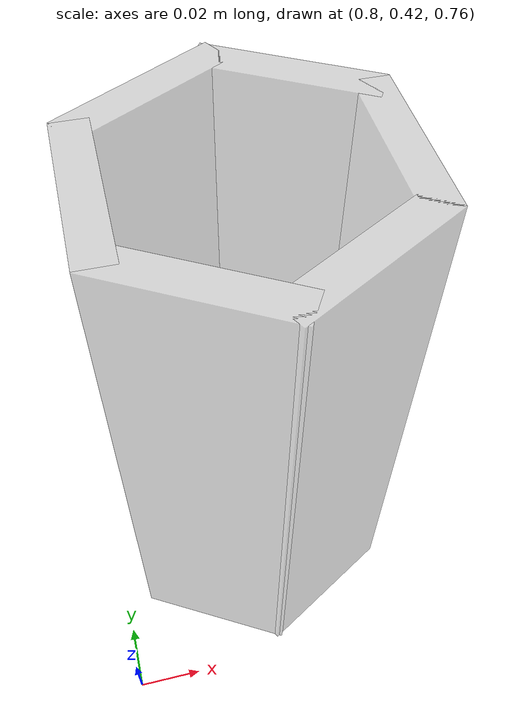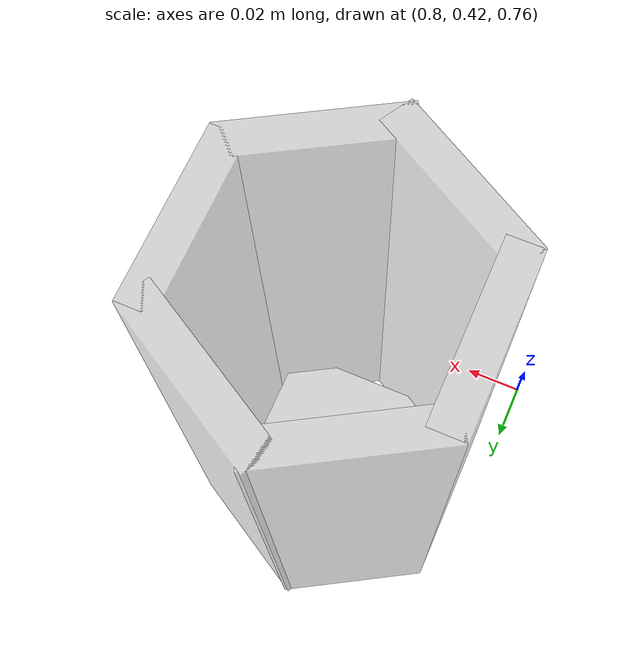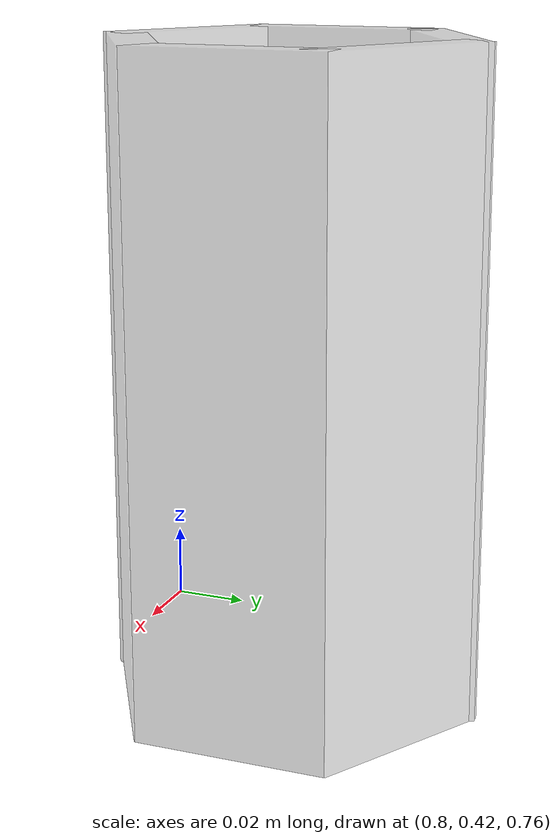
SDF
<sdf version="1.6">
 <world name="default">
  <light name="sun" type="directional">
   <pose>0 0 10 0 -0 0</pose>
   <diffuse>0.8 0.8 0.8 1</diffuse>
   <specular>0.2 0.2 0.2 1</specular>
   <attenuation>
    <range>1000</range>
    <constant>0.9</constant>
    <linear>0.01</linear>
    <quadratic>0.001</quadratic>
   </attenuation>
   <direction>-0.5 0.1 -0.9</direction>
  </light>
  <physics name="dart_1ms" default="1" type="dart">
   <max_step_size>0.001</max_step_size>
   <real_time_factor>1</real_time_factor>
   <real_time_update_rate>1000</real_time_update_rate>
   <dart><solver><solver_type>pgs</solver_type></solver></dart>
  </physics>
  <physics name="dart_2ms" default="0" type="dart">
   <max_step_size>0.002</max_step_size>
   <real_time_factor>1</real_time_factor>
   <real_time_update_rate>500</real_time_update_rate>
   <dart><solver><solver_type>pgs</solver_type></solver></dart>
  </physics>
  <physics name="dart_3ms" default="0" type="dart">
   <max_step_size>0.003</max_step_size>
   <real_time_factor>1</real_time_factor>
   <real_time_update_rate>333</real_time_update_rate>
   <dart><solver><solver_type>pgs</solver_type></solver></dart>
  </physics>
  <physics name="ode_1ms" default="0" type="ode">
   <max_step_size>0.001</max_step_size>
   <real_time_factor>1</real_time_factor>
   <real_time_update_rate>1000</real_time_update_rate>
  </physics>
  <physics name="ode_2ms" default="0" type="ode">
   <max_step_size>0.002</max_step_size>
   <real_time_factor>1</real_time_factor>
   <real_time_update_rate>500</real_time_update_rate>
  </physics>
  <physics name="ode_3ms" default="0" type="ode">
   <max_step_size>0.003</max_step_size>
   <real_time_factor>1</real_time_factor>
   <real_time_update_rate>333</real_time_update_rate>
  </physics>
  <model name="ground_plane">
   <static>1</static>
   <link name="link">
    <collision name="collision">
     <geometry><plane><normal>0 0 1</normal><size>100 100</size></plane></geometry>
     <surface>
      <contact><collide_bitmask>65535</collide_bitmask></contact>
      <friction><ode><mu>100</mu><mu2>50</mu2></ode></friction>
     </surface>
    </collision>
    <visual name="visual">
     <cast_shadows>0</cast_shadows>
     <geometry><plane><normal>0 0 1</normal><size>100 100</size></plane></geometry>
     <material>
      <script><uri>file://media/materials/scripts/gazebo.material</uri><name>Gazebo/Grey</name></script>
     </material>
    </visual>
   </link>
  </model>
  <gravity>0 0 -9.8</gravity>
  <magnetic_field>6e-06 2.3e-05 -4.2e-05</magnetic_field>
  <atmosphere type="adiabatic"/>
  <scene><ambient>0.4 0.4 0.4 1</ambient><background>0.7 0.7 0.7 1</background><shadows>1</shadows></scene>
  <audio><device>default</device></audio>
  <spherical_coordinates>
   <surface_model>EARTH_WGS84</surface_model>
   <latitude_deg>0</latitude_deg>
   <longitude_deg>0</longitude_deg>
   <elevation>0</elevation>
   <heading_deg>0</heading_deg>
  </spherical_coordinates>
  <model name="jar_hollow">
   <link name="link">
    <inertial>
     <mass>0.1</mass>
     <inertia><ixx>0.0004</ixx><ixy>0</ixy><ixz>0</ixz><iyy>0.0004</iyy><iyz>0</iyz><izz>0.00012</izz></inertia>
    </inertial>
    <collision name="side1">
     <pose>0.037581 0 -0.015 0 -0 0</pose>
     <geometry><box><size>0.01 0.05 0.17</size></box></geometry>
     <surface>
      <friction><ode><mu>1</mu><mu2>1</mu2></ode></friction>
      <contact><ode><kp>1e+07</kp><kd>1</kd><min_depth>0.001</min_depth><max_vel>0.1</max_vel></ode></contact>
     </surface>
    </collision>
    <collision name="side2">
     <pose>-0.037581 0 -0.015 0 -0 0</pose>
     <geometry><box><size>0.01 0.05 0.17</size></box></geometry>
     <surface>
      <friction><ode><mu>1</mu><mu2>1</mu2></ode></friction>
      <contact><ode><kp>1e+07</kp><kd>1</kd><min_depth>0.001</min_depth><max_vel>0.1</max_vel></ode></contact>
     </surface>
    </collision>
    <collision name="side3">
     <pose>0.018437 -0.033383 -0.015 0 0 -1.04717</pose>
     <geometry><box><size>0.01 0.05 0.17</size></box></geometry>
     <surface>
      <friction><ode><mu>1</mu><mu2>1</mu2></ode></friction>
      <contact><ode><kp>1e+07</kp><kd>1</kd><min_depth>0.001</min_depth><max_vel>0.1</max_vel></ode></contact>
     </surface>
    </collision>
    <collision name="side4">
     <pose>-0.018437 0.033383 -0.015 0 0 -1.04717</pose>
     <geometry><box><size>0.01 0.05 0.17</size></box></geometry>
     <surface>
      <friction><ode><mu>1</mu><mu2>1</mu2></ode></friction>
      <contact><ode><kp>1e+07</kp><kd>1</kd><min_depth>0.001</min_depth><max_vel>0.1</max_vel></ode></contact>
     </surface>
    </collision>
    <collision name="side5">
     <pose>-0.018437 -0.033383 -0.015 0 -0 1.04717</pose>
     <geometry><box><size>0.01 0.05 0.17</size></box></geometry>
     <surface>
      <friction><ode><mu>1</mu><mu2>1</mu2></ode></friction>
      <contact><ode><kp>1e+07</kp><kd>1</kd><min_depth>0.001</min_depth><max_vel>0.1</max_vel></ode></contact>
     </surface>
    </collision>
    <collision name="side6">
     <pose>0.018437 0.033383 -0.015 0 -0 1.04717</pose>
     <geometry><box><size>0.01 0.05 0.17</size></box></geometry>
     <surface>
      <friction><ode><mu>1</mu><mu2>1</mu2></ode></friction>
      <contact><ode><kp>1e+07</kp><kd>1</kd><min_depth>0.001</min_depth><max_vel>0.1</max_vel></ode></contact>
     </surface>
    </collision>
    <collision name="bottom">
     <pose>0 0 -0.09 0 -0 0</pose>
     <geometry><box><size>0.06 0.06 0.02</size></box></geometry>
     <surface>
      <friction><ode><mu>1</mu><mu2>1</mu2></ode></friction>
      <contact><ode><kp>1e+07</kp><kd>1</kd><min_depth>0.001</min_depth><max_vel>0.1</max_vel></ode></contact>
     </surface>
    </collision>
    <visual name="side1">
     <pose>0.037581 0 -0.015 0 -0 0</pose>
     <geometry><box><size>0.01 0.05 0.17</size></box></geometry>
     <material><diffuse>0.7 0.7 0.7 0.5</diffuse></material>
    </visual>
    <visual name="side2">
     <pose>-0.037581 0 -0.015 0 -0 0</pose>
     <geometry><box><size>0.01 0.05 0.17</size></box></geometry>
     <material><diffuse>0.7 0.7 0.7 0.5</diffuse></material>
    </visual>
    <visual name="side3">
     <pose>0.018437 -0.033383 -0.015 0 0 -1.04717</pose>
     <geometry><box><size>0.01 0.05 0.17</size></box></geometry>
     <material><diffuse>0.7 0.7 0.7 0.5</diffuse></material>
    </visual>
    <visual name="side4">
     <pose>-0.018437 0.033383 -0.015 0 0 -1.04717</pose>
     <geometry><box><size>0.01 0.05 0.17</size></box></geometry>
     <material><diffuse>0.7 0.7 0.7 0.5</diffuse></material>
    </visual>
    <visual name="side5">
     <pose>-0.018437 -0.033383 -0.015 0 -0 1.04717</pose>
     <geometry><box><size>0.01 0.05 0.17</size></box></geometry>
     <material><diffuse>0.7 0.7 0.7 0.5</diffuse></material>
    </visual>
    <visual name="side6">
     <pose>0.018437 0.033383 -0.015 0 -0 1.04717</pose>
     <geometry><box><size>0.01 0.05 0.17</size></box></geometry>
     <material><diffuse>0.7 0.7 0.7 0.5</diffuse></material>
    </visual>
    <visual name="bottom">
     <pose>0 0 -0.09 0 -0 0</pose>
     <geometry><box><size>0.06 0.06 0.02</size></box></geometry>
     <material><diffuse>0.7 0.7 0.7 0.5</diffuse></material>
    </visual>
   </link>
   <joint name="cap_hinge" type="revolute">
    <parent>link</parent>
    <child>hidden_cap</child>
    <axis>
     <xyz>1 0 0</xyz>
     <limit><lower>-1.57</lower><upper>0</upper></limit>
     <dynamics>
      <friction>1</friction>
      <spring_reference>0</spring_reference>
      <spring_stiffness>0</spring_stiffness>
     </dynamics>
     <use_parent_model_frame>0</use_parent_model_frame>
    </axis>
    <pose>0 -0.035 0.07 0 -0 0</pose>
   </joint>
   <link name="hidden_cap">
    <gravity>0</gravity>
    <inertial>
     <pose>0 0 0.07 0 -0 0</pose>
     <mass>0.02</mass>
     <inertia><ixx>0.00015</ixx><ixy>0</ixy><ixz>0</ixz><iyy>0.00015</iyy><iyz>0</iyz><izz>3e-05</izz></inertia>
    </inertial>
    <collision name="collision1">
     <pose>0 0 0.07 0 -0 0</pose>
     <geometry><box><size>0.05 0.05 0.006</size></box></geometry>
     <surface>
      <friction><ode><mu>1</mu><mu2>1</mu2></ode></friction>
      <contact><ode><kp>1e+07</kp><kd>1</kd><min_depth>0.001</min_depth><max_vel>0.1</max_vel></ode></contact>
     </surface>
    </collision>
   </link>
   <pose>0.850805 0.475859 0.86 -6e-06 4e-06 0.000198</pose>
  </model>
 </world>
</sdf>
